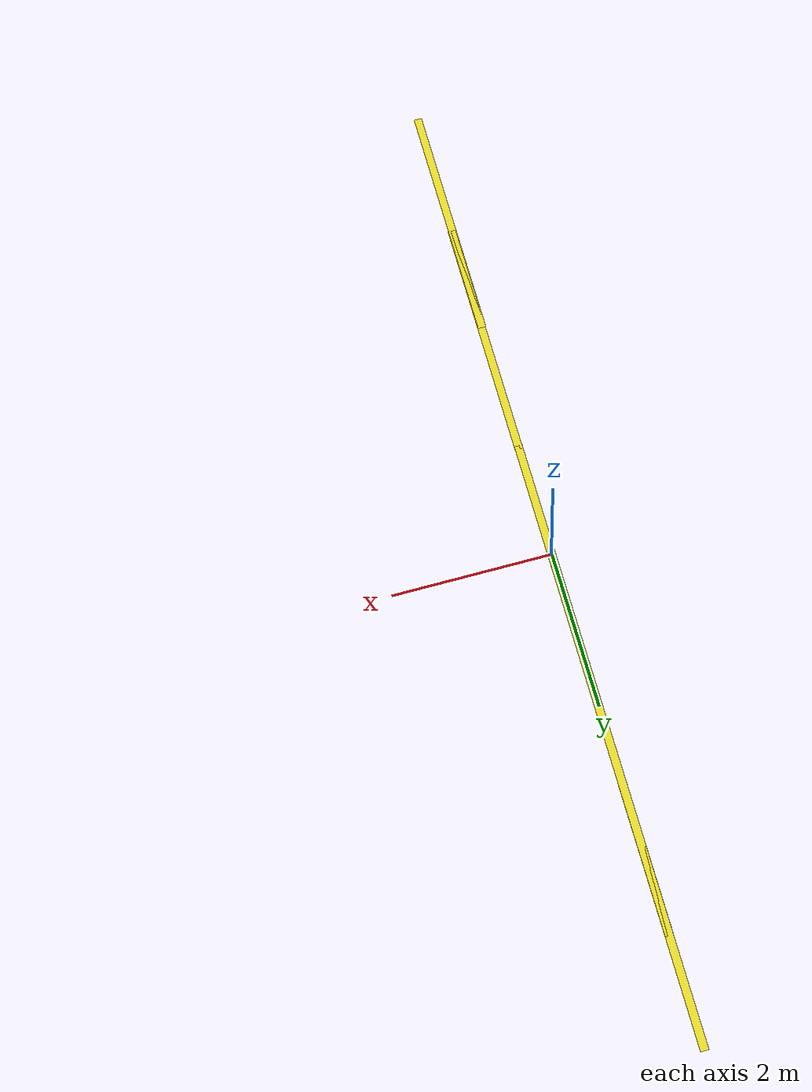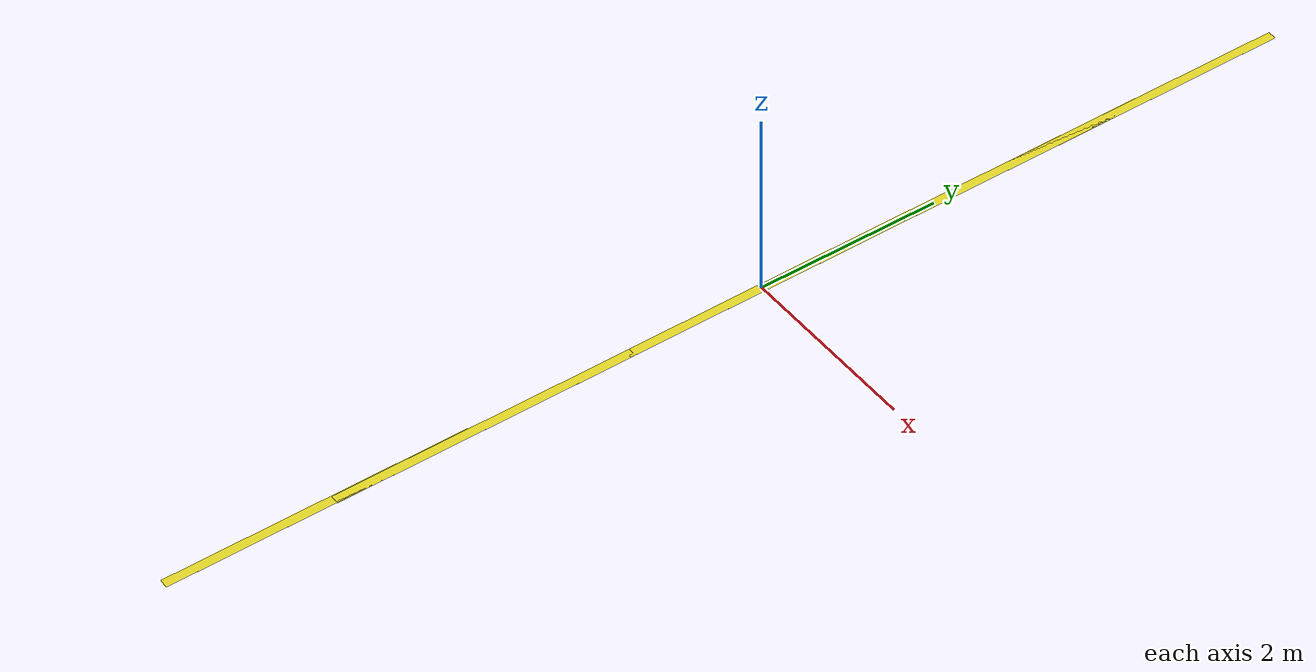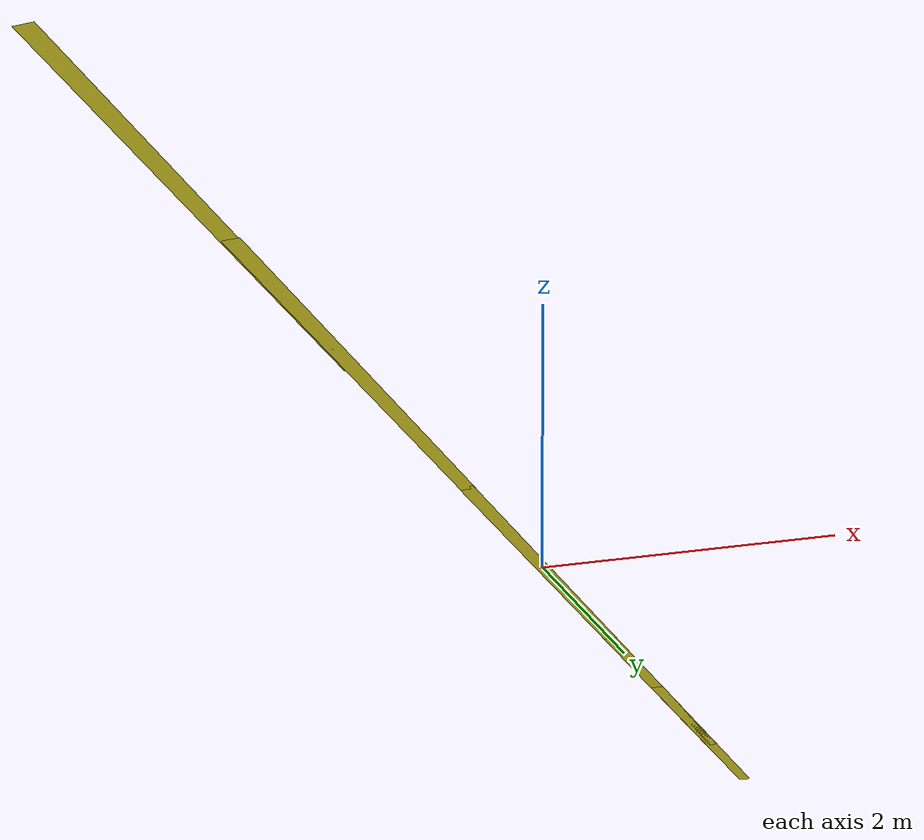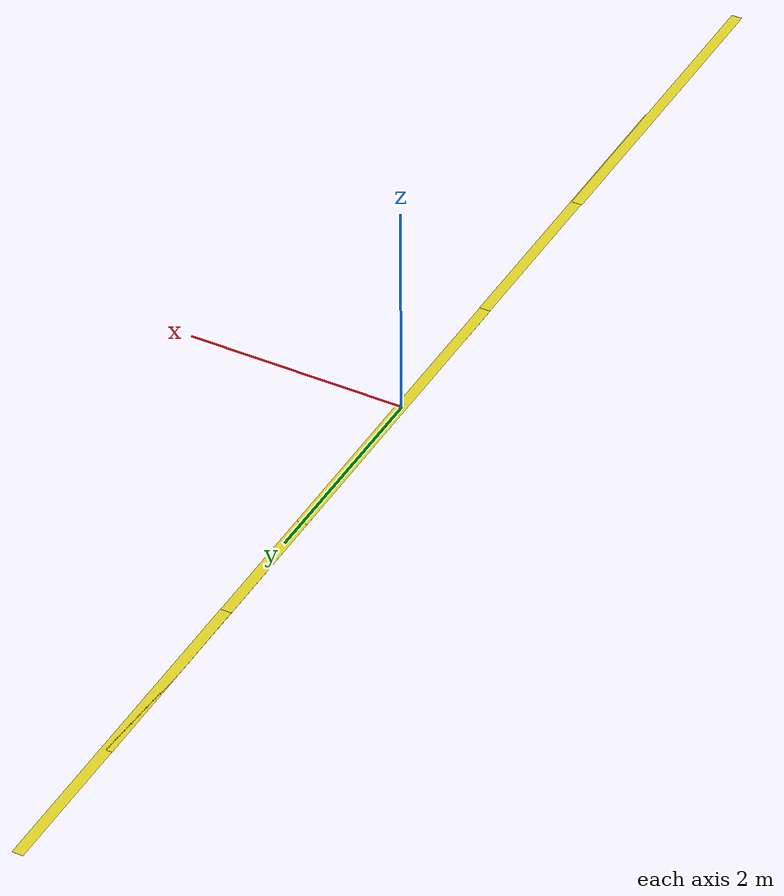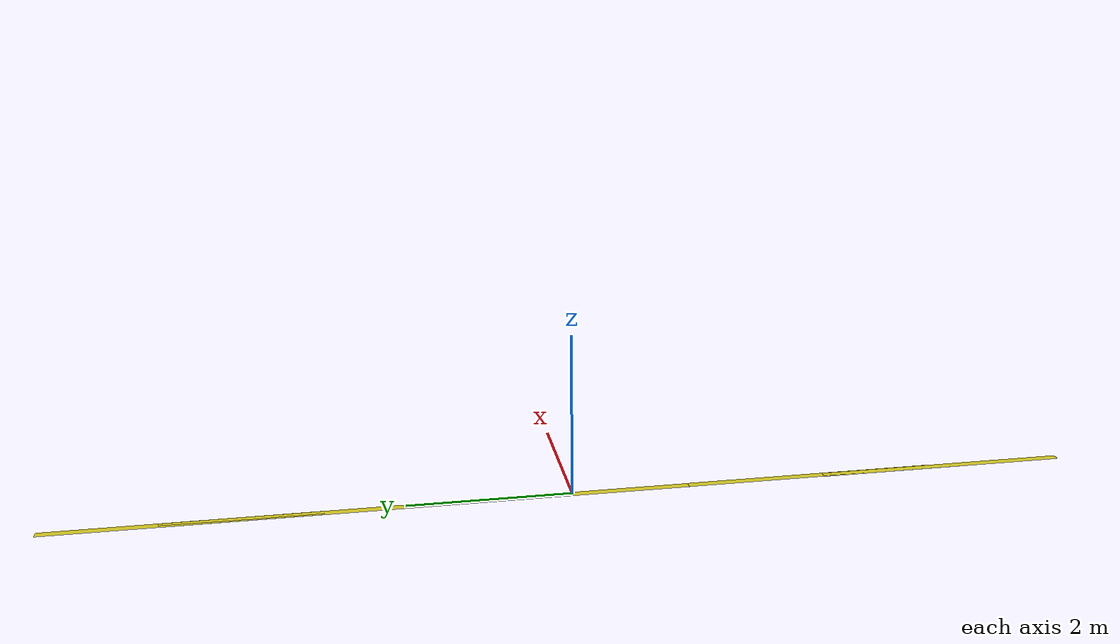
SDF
<?xml version='1.0'?>
<sdf version='1.7'>
  <model name='lines'>
    <model name='yellow line'>
      <static>1</static>
      <link name='link_ground'>
        <collision name='collision'>
          <geometry>
            <plane>
              <normal>0 0 1</normal>
              <size>0.1 3.2</size>
            </plane>
          </geometry>
          <surface>
            <friction>
              <ode>
                <mu>100</mu>
                <mu2>50</mu2>
              </ode>
            </friction>
          </surface>
        </collision>
        <visual name='visual_ground'>
          <cast_shadows>0</cast_shadows>
          <geometry>
            <plane>
              <normal>0 0 1</normal>
              <size>0.1 3.2</size>
            </plane>
          </geometry>
          <material>
            <script>
              <uri>file://media/materials/scripts/gazebo.material</uri>
              <name>Gazebo/Yellow</name>
            </script>
          </material>
        </visual>
      </link>
      <pose>-0.0001 3.21537 0 0 -0 0</pose>
    </model>
    <model name='yellow line_0'>
      <static>1</static>
      <link name='link_ground'>
        <collision name='collision'>
          <geometry>
            <plane>
              <normal>0 0 1</normal>
              <size>0.1 3.2</size>
            </plane>
          </geometry>
          <surface>
            <friction>
              <ode>
                <mu>100</mu>
                <mu2>50</mu2>
              </ode>
            </friction>
          </surface>
        </collision>
        <visual name='visual_ground'>
          <cast_shadows>0</cast_shadows>
          <geometry>
            <plane>
              <normal>0 0 1</normal>
              <size>0.1 3.2</size>
            </plane>
          </geometry>
          <material>
            <script>
              <uri>file://media/materials/scripts/gazebo.material</uri>
              <name>Gazebo/Yellow</name>
            </script>
          </material>
        </visual>
      </link>
      <pose>0.000129 0.100122 0 0 -0 0</pose>
    </model>
    <model name='yellow line_1'>
      <static>1</static>
      <link name='link_ground'>
        <collision name='collision'>
          <geometry>
            <plane>
              <normal>0 0 1</normal>
              <size>0.1 3.2</size>
            </plane>
          </geometry>
          <surface>
            <friction>
              <ode>
                <mu>100</mu>
                <mu2>50</mu2>
              </ode>
            </friction>
          </surface>
        </collision>
        <visual name='visual_ground'>
          <cast_shadows>0</cast_shadows>
          <geometry>
            <plane>
              <normal>0 0 1</normal>
              <size>0.1 3.2</size>
            </plane>
          </geometry>
          <material>
            <script>
              <uri>file://media/materials/scripts/gazebo.material</uri>
              <name>Gazebo/Yellow</name>
            </script>
          </material>
        </visual>
      </link>
      <pose>0.002851 -3.05481 0 0 -0 0</pose>
    </model>
    <model name='yellow line_2'>
      <static>1</static>
      <link name='link_ground'>
        <collision name='collision'>
          <geometry>
            <plane>
              <normal>0 0 1</normal>
              <size>0.1 3.2</size>
            </plane>
          </geometry>
          <surface>
            <friction>
              <ode>
                <mu>100</mu>
                <mu2>50</mu2>
              </ode>
            </friction>
          </surface>
        </collision>
        <visual name='visual_ground'>
          <cast_shadows>0</cast_shadows>
          <geometry>
            <plane>
              <normal>0 0 1</normal>
              <size>0.1 3.2</size>
            </plane>
          </geometry>
          <material>
            <script>
              <uri>file://media/materials/scripts/gazebo.material</uri>
              <name>Gazebo/Yellow</name>
            </script>
          </material>
        </visual>
      </link>
      <pose>-0.004735 -4.80495 0 0 -0 0</pose>
    </model>
    <model name='yellow line_3'>
      <static>1</static>
      <link name='link_ground'>
        <collision name='collision'>
          <geometry>
            <plane>
              <normal>0 0 1</normal>
              <size>0.1 3.2</size>
            </plane>
          </geometry>
          <surface>
            <friction>
              <ode>
                <mu>100</mu>
                <mu2>50</mu2>
              </ode>
            </friction>
          </surface>
        </collision>
        <visual name='visual_ground'>
          <cast_shadows>0</cast_shadows>
          <geometry>
            <plane>
              <normal>0 0 1</normal>
              <size>0.1 3.2</size>
            </plane>
          </geometry>
          <material>
            <script>
              <uri>file://media/materials/scripts/gazebo.material</uri>
              <name>Gazebo/Yellow</name>
            </script>
          </material>
        </visual>
      </link>
      <pose>0.001848 4.54426 0 0 -0 0</pose>
    </model>
    <static>0</static>
    <allow_auto_disable>1</allow_auto_disable>
  </model>
</sdf>
